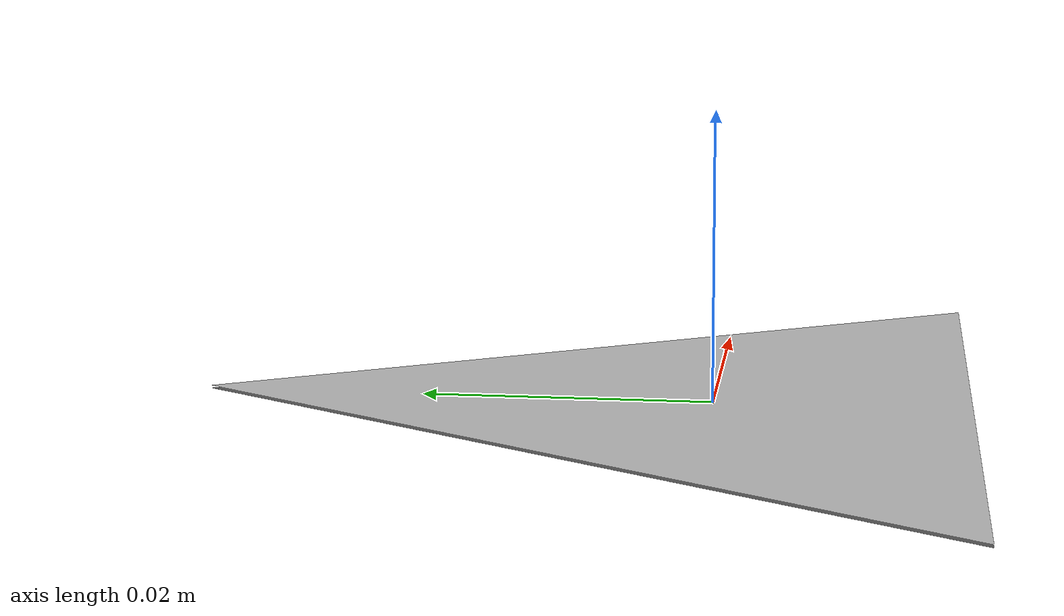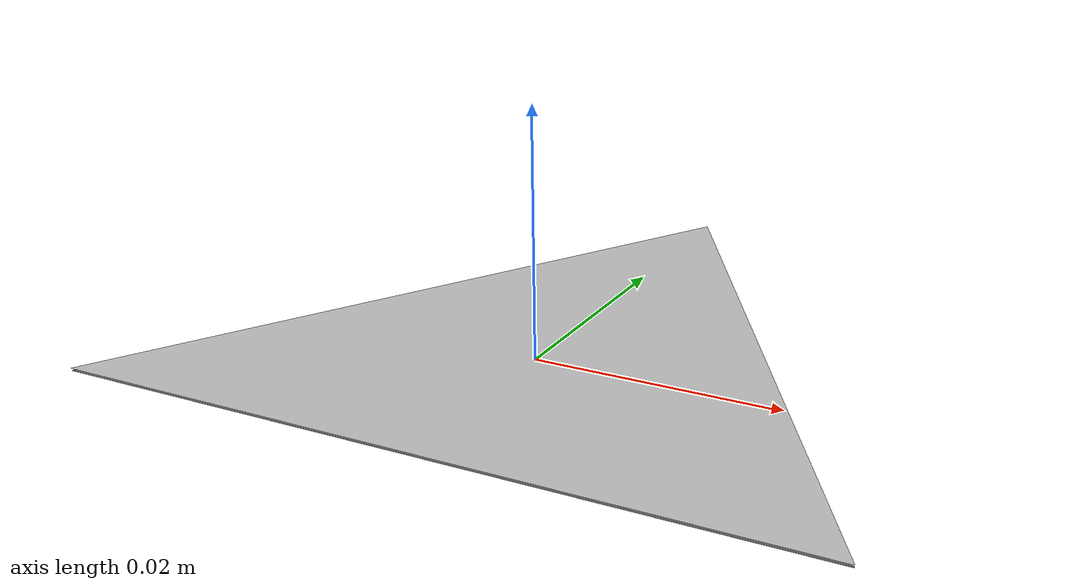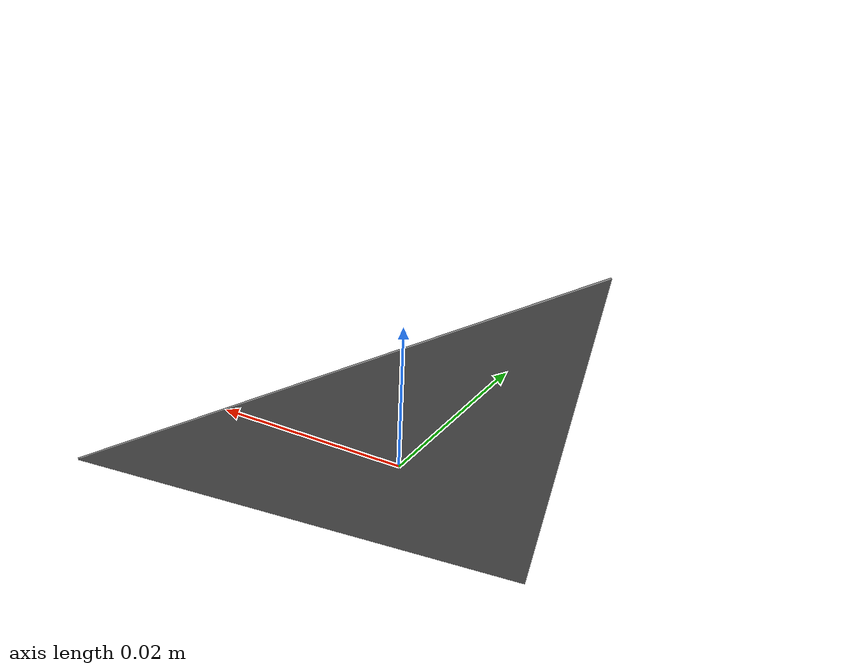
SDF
<?xml version="1.0"?>
<sdf version='1.4'>
    <model name="roadwork">
        <static>1</static>
        <link name="link_1">
            <visual name='visual'>
                <pose frame=''>0 0 0 0 0 0</pose>
                <geometry>
                    <mesh>
                        <uri>model://roadwork/meshes/roadwork.dae</uri>
                    </mesh>
                </geometry>
            </visual>
        </link>
    </model>
</sdf>
